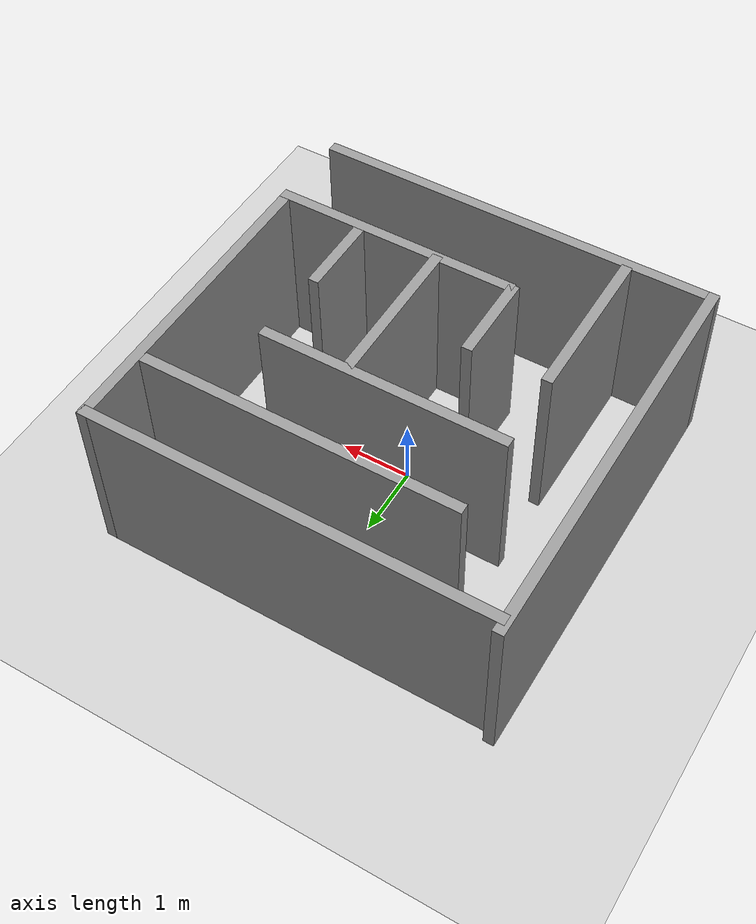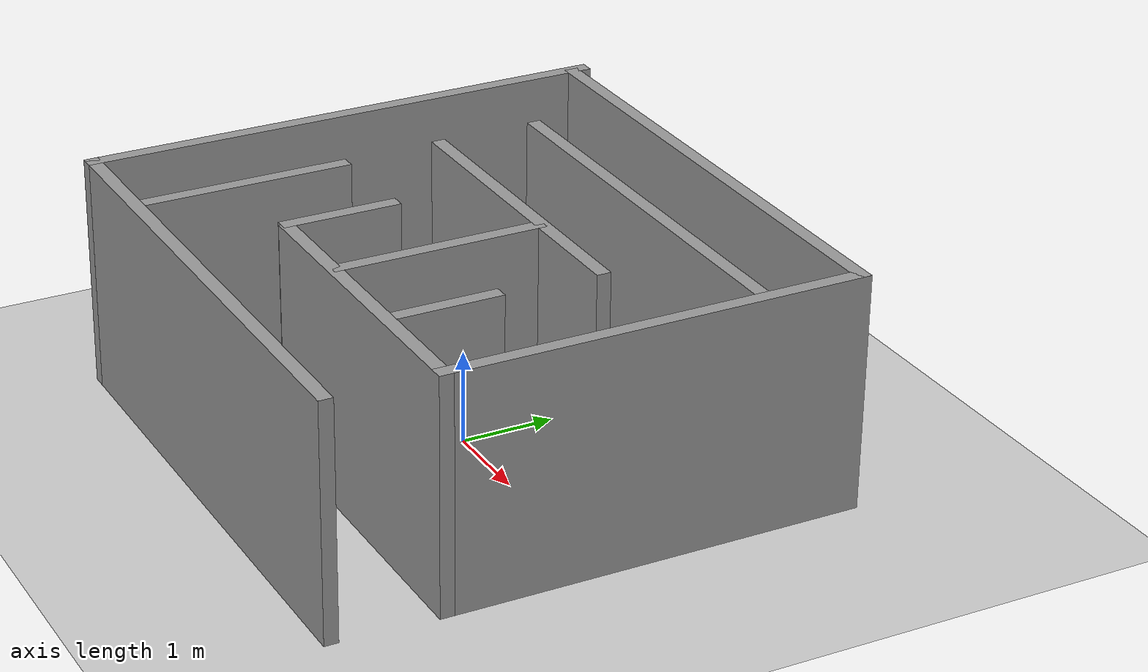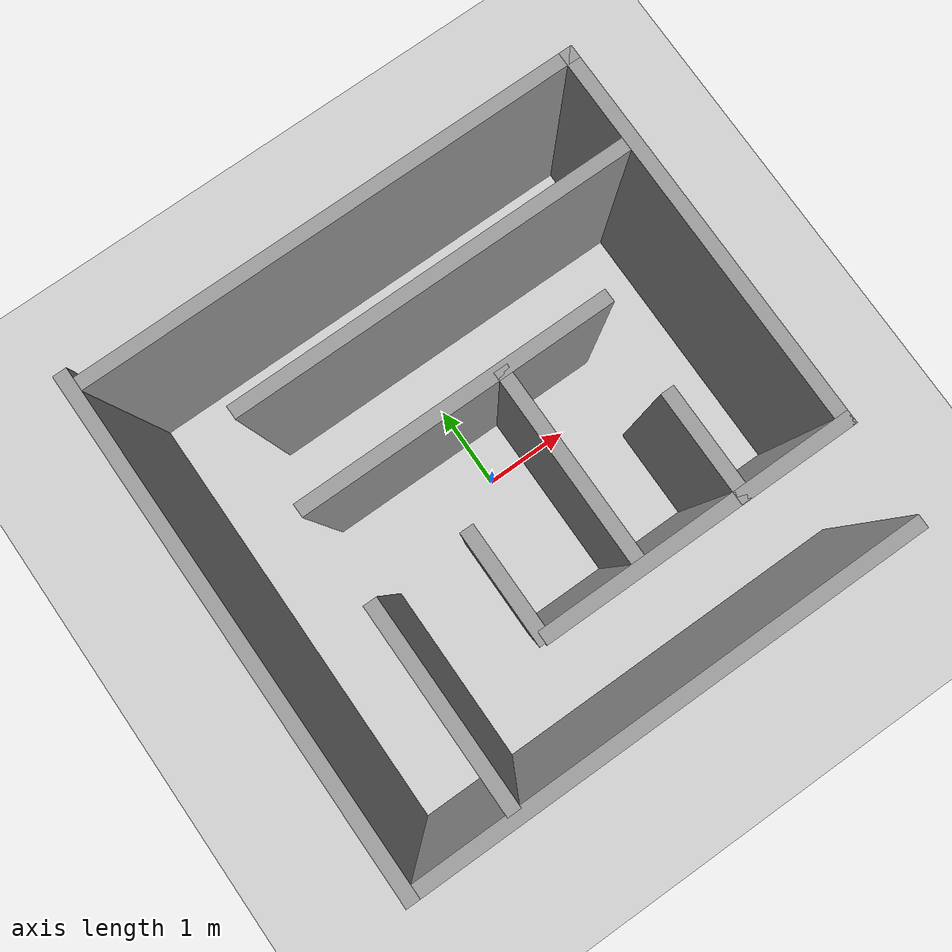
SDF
<sdf version="1.6">
 <world name="default">
  <light name="sun" type="directional">
   <pose>0 0 10 0 -0 0</pose>
   <diffuse>0.8 0.8 0.8 1</diffuse>
   <specular>0.1 0.1 0.1 1</specular>
   <attenuation>
    <range>1000</range>
    <constant>0.9</constant>
    <linear>0.01</linear>
    <quadratic>0.001</quadratic>
   </attenuation>
   <direction>-0.5 0.5 -1</direction>
  </light>
  <model name="ground_plane">
   <static>1</static>
   <link name="link">
    <collision name="collision">
     <geometry><plane><normal>0 0 1</normal><size>100 100</size></plane></geometry>
     <surface><friction><ode><mu>100</mu><mu2>50</mu2></ode></friction></surface>
    </collision>
    <visual name="visual">
     <cast_shadows>0</cast_shadows>
     <geometry><plane><normal>0 0 1</normal><size>100 100</size></plane></geometry>
     <material>
      <script><uri>file://media/materials/scripts/gazebo.material</uri><name>Gazebo/Grey</name></script>
     </material>
    </visual>
   </link>
  </model>
  <gravity>0 0 -9.8</gravity>
  <magnetic_field>6e-06 2.3e-05 -4.2e-05</magnetic_field>
  <atmosphere type="adiabatic"/>
  <physics name="default_physics" default="0" type="ode">
   <max_step_size>0.001</max_step_size>
   <real_time_factor>1</real_time_factor>
   <real_time_update_rate>1000</real_time_update_rate>
  </physics>
  <scene><ambient>0.4 0.4 0.4 1</ambient><background>0.7 0.7 0.7 1</background><shadows>1</shadows></scene>
  <spherical_coordinates>
   <surface_model>EARTH_WGS84</surface_model>
   <latitude_deg>0</latitude_deg>
   <longitude_deg>0</longitude_deg>
   <elevation>0</elevation>
   <heading_deg>0</heading_deg>
  </spherical_coordinates>
  <model name="RealMaze">
   <pose>-0.009553 0.050161 0 0 -0 0</pose>
   <link name="Wall_0">
    <collision name="Wall_0_Collision">
     <geometry><box><size>5.75 0.15 2.5</size></box></geometry>
     <pose>0 0 1.25 0 -0 0</pose>
    </collision>
    <visual name="Wall_0_Visual">
     <pose>0 0 1.25 0 -0 0</pose>
     <geometry><box><size>5.75 0.15 2.5</size></box></geometry>
     <material>
      <script><uri>file://media/materials/scripts/gazebo.material</uri><name>Gazebo/Grey</name></script>
      <ambient>1 1 1 1</ambient>
     </material>
    </visual>
    <pose>0.030737 2.68239 0 0 -0 0</pose>
   </link>
   <link name="Wall_11">
    <collision name="Wall_11_Collision">
     <geometry><box><size>4.5 0.15 2.5</size></box></geometry>
     <pose>0 0 1.25 0 -0 0</pose>
    </collision>
    <visual name="Wall_11_Visual">
     <pose>0 0 1.25 0 -0 0</pose>
     <geometry><box><size>4.5 0.15 2.5</size></box></geometry>
     <material>
      <script><uri>file://media/materials/scripts/gazebo.material</uri><name>Gazebo/Grey</name></script>
      <ambient>1 1 1 1</ambient>
     </material>
    </visual>
    <pose>0.505221 1.64583 0 0 -0 0</pose>
   </link>
   <link name="Wall_13">
    <collision name="Wall_13_Collision">
     <geometry><box><size>3.5 0.15 2.5</size></box></geometry>
     <pose>0 0 1.25 0 -0 0</pose>
    </collision>
    <visual name="Wall_13_Visual">
     <pose>0 0 1.25 0 -0 0</pose>
     <geometry><box><size>3.5 0.15 2.5</size></box></geometry>
     <material>
      <script><uri>file://media/materials/scripts/gazebo.material</uri><name>Gazebo/Grey</name></script>
      <ambient>1 1 1 1</ambient>
     </material>
    </visual>
    <pose>0.005221 0.541865 0 0 -0 0</pose>
   </link>
   <link name="Wall_15">
    <collision name="Wall_15_Collision">
     <geometry><box><size>2.25 0.15 2.5</size></box></geometry>
     <pose>0 0 1.25 0 -0 0</pose>
    </collision>
    <visual name="Wall_15_Visual">
     <pose>0 0 1.25 0 -0 0</pose>
     <geometry><box><size>2.25 0.15 2.5</size></box></geometry>
     <material>
      <script><uri>file://media/materials/scripts/gazebo.material</uri><name>Gazebo/Grey</name></script>
      <ambient>1 1 1 1</ambient>
     </material>
    </visual>
    <pose>0.519436 -0.564268 0 0 0 -1.5708</pose>
   </link>
   <link name="Wall_17">
    <collision name="Wall_17_Collision">
     <geometry><box><size>1.25 0.15 2.5</size></box></geometry>
     <pose>0 0 1.25 0 -0 0</pose>
    </collision>
    <visual name="Wall_17_Visual">
     <pose>0 0 1.25 0 -0 0</pose>
     <geometry><box><size>1.25 0.15 2.5</size></box></geometry>
     <material>
      <script><uri>file://media/materials/scripts/gazebo.material</uri><name>Gazebo/Grey</name></script>
      <ambient>1 1 1 1</ambient>
     </material>
    </visual>
    <pose>-0.584527 -1.09339 0 0 0 -1.5708</pose>
   </link>
   <link name="Wall_20">
    <collision name="Wall_20_Collision">
     <geometry><box><size>3.5 0.15 2.5</size></box></geometry>
     <pose>0 0 1.25 0 -0 0</pose>
    </collision>
    <visual name="Wall_20_Visual">
     <pose>0 0 1.25 0 -0 0</pose>
     <geometry><box><size>3.5 0.15 2.5</size></box></geometry>
     <material>
      <script><uri>file://media/materials/scripts/gazebo.material</uri><name>Gazebo/Grey</name></script>
      <ambient>1 1 1 1</ambient>
     </material>
    </visual>
    <pose>1.15574 -1.66761 0 0 -0 3.14159</pose>
   </link>
   <link name="Wall_22">
    <collision name="Wall_22_Collision">
     <geometry><box><size>1.25 0.15 2.5</size></box></geometry>
     <pose>0 0 1.25 0 -0 0</pose>
    </collision>
    <visual name="Wall_22_Visual">
     <pose>0 0 1.25 0 -0 0</pose>
     <geometry><box><size>1.25 0.15 2.5</size></box></geometry>
     <material>
      <script><uri>file://media/materials/scripts/gazebo.material</uri><name>Gazebo/Grey</name></script>
      <ambient>1 1 1 1</ambient>
     </material>
    </visual>
    <pose>1.66082 -1.1121 0 0 0 -1.5708</pose>
   </link>
   <link name="Wall_4">
    <collision name="Wall_4_Collision">
     <geometry><box><size>4.5 0.15 2.5</size></box></geometry>
     <pose>0 0 1.25 0 -0 0</pose>
    </collision>
    <visual name="Wall_4_Visual">
     <pose>0 0 1.25 0 -0 0</pose>
     <geometry><box><size>4.5 0.15 2.5</size></box></geometry>
     <material>
      <script><uri>file://media/materials/scripts/gazebo.material</uri><name>Gazebo/Grey</name></script>
      <ambient>1 1 1 1</ambient>
     </material>
    </visual>
    <pose>2.83074 0.507393 0 0 0 -1.5708</pose>
   </link>
   <link name="Wall_6">
    <collision name="Wall_6_Collision">
     <geometry><box><size>5.75 0.15 2.5</size></box></geometry>
     <pose>0 0 1.25 0 -0 0</pose>
    </collision>
    <visual name="Wall_6_Visual">
     <pose>0 0 1.25 0 -0 0</pose>
     <geometry><box><size>5.75 0.15 2.5</size></box></geometry>
     <material>
      <script><uri>file://media/materials/scripts/gazebo.material</uri><name>Gazebo/Grey</name></script>
      <ambient>1 1 1 1</ambient>
     </material>
    </visual>
    <pose>-0.030737 -2.8 0 0 -0 3.14159</pose>
   </link>
   <link name="Wall_7">
    <collision name="Wall_7_Collision">
     <geometry><box><size>5.75 0.15 2.5</size></box></geometry>
     <pose>0 0 1.25 0 -0 0</pose>
    </collision>
    <visual name="Wall_7_Visual">
     <pose>0 0 1.25 0 -0 0</pose>
     <geometry><box><size>5.75 0.15 2.5</size></box></geometry>
     <material>
      <script><uri>file://media/materials/scripts/gazebo.material</uri><name>Gazebo/Grey</name></script>
      <ambient>1 1 1 1</ambient>
     </material>
    </visual>
    <pose>-2.83074 0 0 0 -0 1.5708</pose>
   </link>
   <link name="Wall_9">
    <collision name="Wall_9_Collision">
     <geometry><box><size>2.25 0.15 2.5</size></box></geometry>
     <pose>0 0 1.25 0 -0 0</pose>
    </collision>
    <visual name="Wall_9_Visual">
     <pose>0 0 1.25 0 -0 0</pose>
     <geometry><box><size>2.25 0.15 2.5</size></box></geometry>
     <material>
      <script><uri>file://media/materials/scripts/gazebo.material</uri><name>Gazebo/Grey</name></script>
      <ambient>1 1 1 1</ambient>
     </material>
    </visual>
    <pose>-1.66978 -1.63081 0 0 0 -1.5708</pose>
   </link>
   <static>1</static>
  </model>
 </world>
</sdf>
